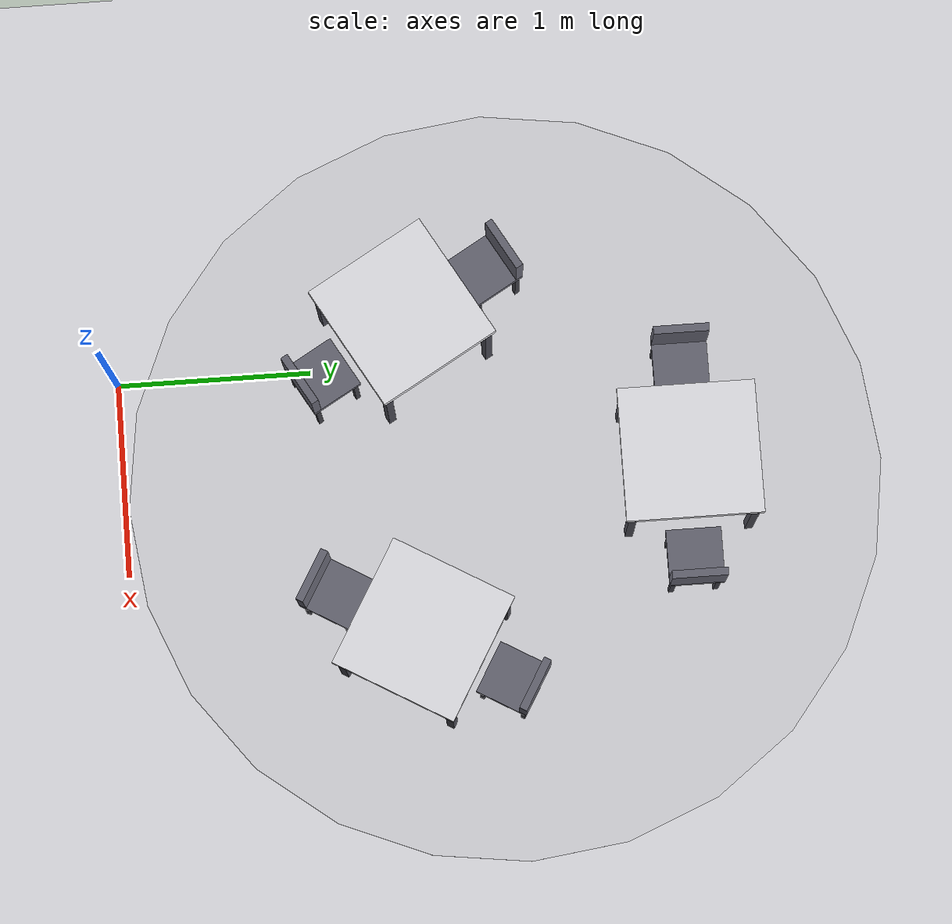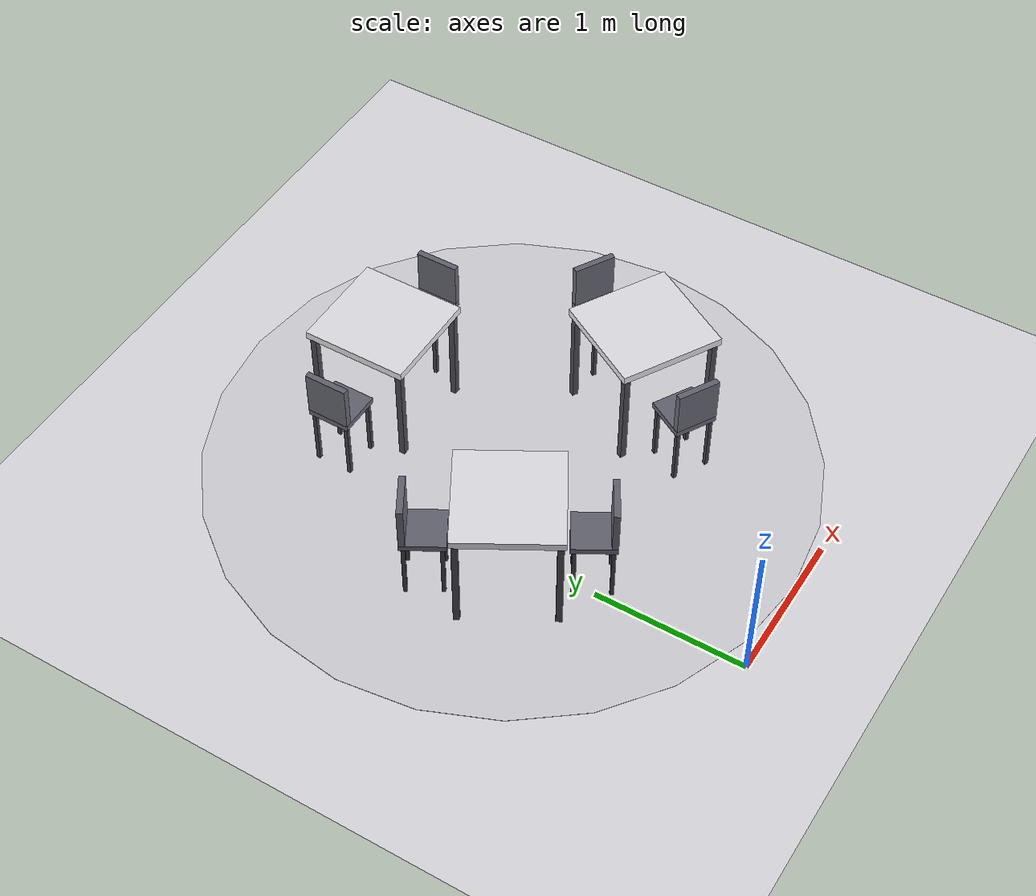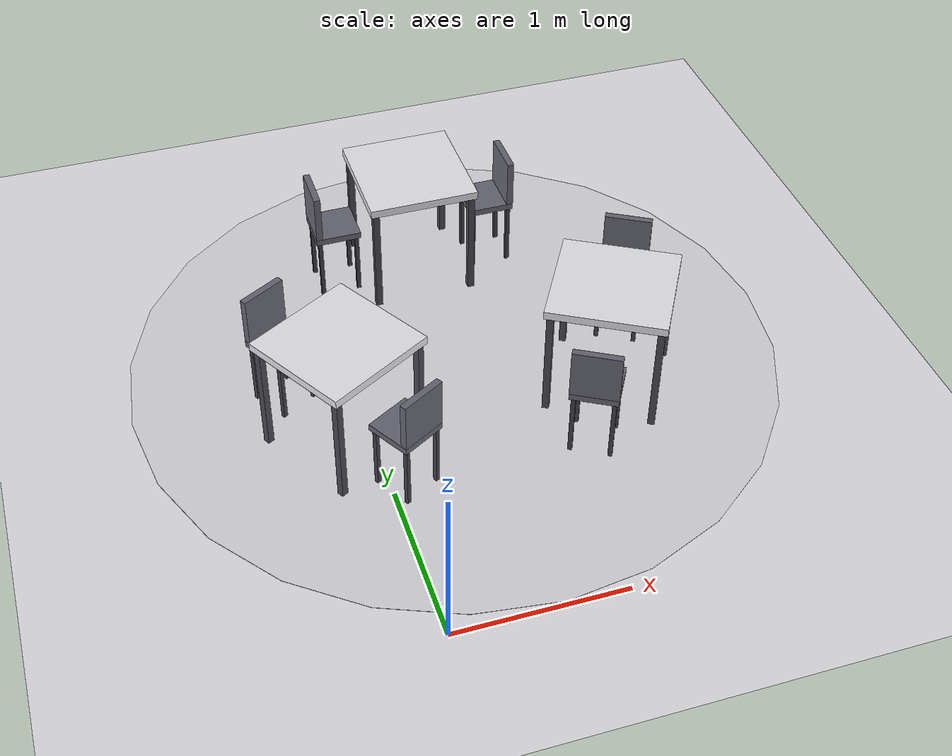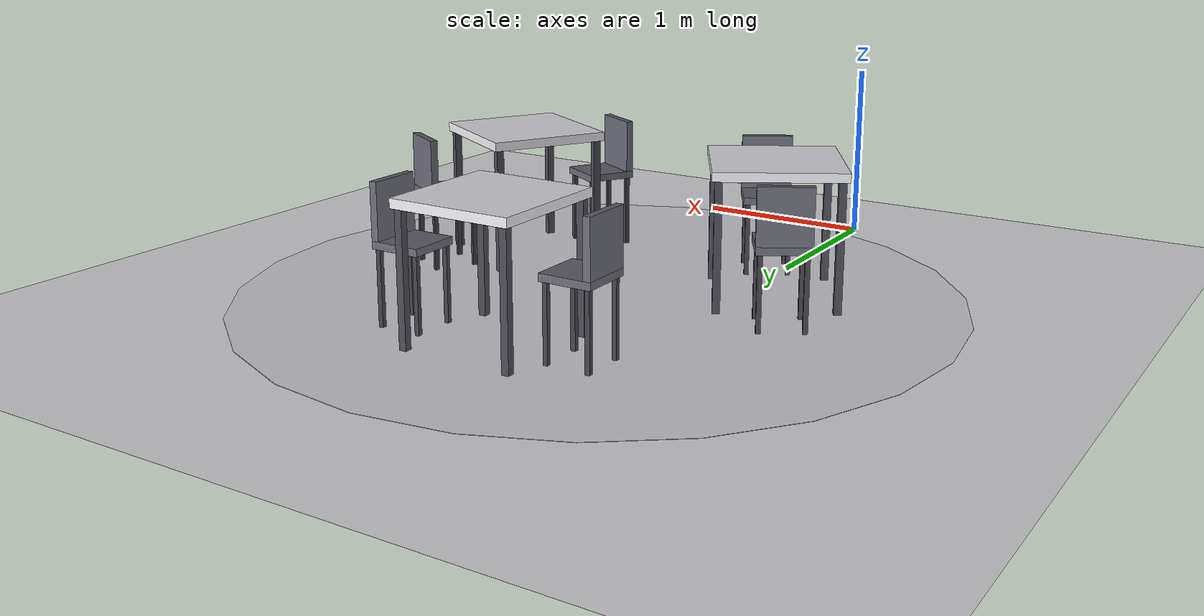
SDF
<sdf version="1.8">
 <world name="restaurant_blueprint_world">
  <model name="ground_plane">
   <static>true</static>
   <link name="link">
    <collision name="collision">
     <geometry><plane><normal>0 0 1</normal><size>120 120</size></plane></geometry>
    </collision>
    <visual name="visual">
     <geometry><plane><normal>0 0 1</normal><size>120 120</size></plane></geometry>
     <material>
      <ambient>0.88 0.88 0.90 1</ambient>
      <diffuse>0.88 0.88 0.90 1</diffuse>
      <specular>0.1 0.1 0.1 1</specular>
     </material>
    </visual>
   </link>
  </model>
  <model name="restaurant_boundary">
   <static>true</static>
   <link name="group02">
    <visual name="east_pillar_floor_disc_vis">
     <pose>0.650 1.970 0.003 0 0 0</pose>
     <geometry><cylinder><radius>1.95</radius><length>0.002</length></cylinder></geometry>
     <material><ambient>0.84 0.84 0.86 1</ambient><diffuse>0.84 0.84 0.86 1</diffuse></material>
    </visual>
    <visual name="e_cluster_table_n_vis">
     <pose>0.650 2.895 0.725 0.0000 0.0000 0.0000</pose>
     <geometry><box><size>0.67 0.69 0.05</size></box></geometry>
     <material><ambient>0.85 0.85 0.88 1</ambient><diffuse>0.90 0.90 0.92 1</diffuse></material>
    </visual>
    <visual name="e_cluster_table_n_leg_1_vis">
     <pose>0.950 3.205 0.350 0 0 0.0000</pose>
     <geometry><box><size>0.04 0.04 0.70</size></box></geometry>
     <material><ambient>0.22 0.22 0.25 1</ambient><diffuse>0.28 0.28 0.32 1</diffuse></material>
    </visual>
    <visual name="e_cluster_table_n_leg_2_vis">
     <pose>0.350 3.205 0.350 0 0 0.0000</pose>
     <geometry><box><size>0.04 0.04 0.70</size></box></geometry>
     <material><ambient>0.22 0.22 0.25 1</ambient><diffuse>0.28 0.28 0.32 1</diffuse></material>
    </visual>
    <visual name="e_cluster_table_n_leg_3_vis">
     <pose>0.950 2.585 0.350 0 0 0.0000</pose>
     <geometry><box><size>0.04 0.04 0.70</size></box></geometry>
     <material><ambient>0.22 0.22 0.25 1</ambient><diffuse>0.28 0.28 0.32 1</diffuse></material>
    </visual>
    <visual name="e_cluster_table_n_leg_4_vis">
     <pose>0.350 2.585 0.350 0 0 0.0000</pose>
     <geometry><box><size>0.04 0.04 0.70</size></box></geometry>
     <material><ambient>0.22 0.22 0.25 1</ambient><diffuse>0.28 0.28 0.32 1</diffuse></material>
    </visual>
    <collision name="e_cluster_table_n_col">
     <pose>0.650 2.895 0.725 0.0000 0.0000 0.0000</pose>
     <geometry><box><size>0.67 0.69 0.05</size></box></geometry>
    </collision>
    <collision name="e_cluster_table_n_leg_1_col">
     <pose>0.950 3.205 0.350 0 0 0.0000</pose>
     <geometry><box><size>0.04 0.04 0.70</size></box></geometry>
    </collision>
    <collision name="e_cluster_table_n_leg_2_col">
     <pose>0.350 3.205 0.350 0 0 0.0000</pose>
     <geometry><box><size>0.04 0.04 0.70</size></box></geometry>
    </collision>
    <collision name="e_cluster_table_n_leg_3_col">
     <pose>0.950 2.585 0.350 0 0 0.0000</pose>
     <geometry><box><size>0.04 0.04 0.70</size></box></geometry>
    </collision>
    <collision name="e_cluster_table_n_leg_4_col">
     <pose>0.350 2.585 0.350 0 0 0.0000</pose>
     <geometry><box><size>0.04 0.04 0.70</size></box></geometry>
    </collision>
    <visual name="e_cluster_chair_n_e_seat_vis">
     <pose>1.146 2.895 0.430 0.0000 0.0000 0.0000</pose>
     <geometry><box><size>0.28 0.28 0.04</size></box></geometry>
     <material><ambient>0.30 0.30 0.33 1</ambient><diffuse>0.40 0.40 0.45 1</diffuse></material>
    </visual>
    <visual name="e_cluster_chair_n_e_back_vis">
     <pose>1.266 2.895 0.600 0 0 0.0000</pose>
     <geometry><box><size>0.04 0.28 0.30</size></box></geometry>
     <material><ambient>0.30 0.30 0.33 1</ambient><diffuse>0.40 0.40 0.45 1</diffuse></material>
    </visual>
    <visual name="e_cluster_chair_n_e_leg_1_vis">
     <pose>1.261 3.010 0.205 0 0 0.0000</pose>
     <geometry><box><size>0.025 0.025 0.41</size></box></geometry>
     <material><ambient>0.20 0.20 0.22 1</ambient><diffuse>0.25 0.25 0.28 1</diffuse></material>
    </visual>
    <visual name="e_cluster_chair_n_e_leg_2_vis">
     <pose>1.031 3.010 0.205 0 0 0.0000</pose>
     <geometry><box><size>0.025 0.025 0.41</size></box></geometry>
     <material><ambient>0.20 0.20 0.22 1</ambient><diffuse>0.25 0.25 0.28 1</diffuse></material>
    </visual>
    <visual name="e_cluster_chair_n_e_leg_3_vis">
     <pose>1.261 2.780 0.205 0 0 0.0000</pose>
     <geometry><box><size>0.025 0.025 0.41</size></box></geometry>
     <material><ambient>0.20 0.20 0.22 1</ambient><diffuse>0.25 0.25 0.28 1</diffuse></material>
    </visual>
    <visual name="e_cluster_chair_n_e_leg_4_vis">
     <pose>1.031 2.780 0.205 0 0 0.0000</pose>
     <geometry><box><size>0.025 0.025 0.41</size></box></geometry>
     <material><ambient>0.20 0.20 0.22 1</ambient><diffuse>0.25 0.25 0.28 1</diffuse></material>
    </visual>
    <collision name="e_cluster_chair_n_e_seat_col">
     <pose>1.146 2.895 0.430 0.0000 0.0000 0.0000</pose>
     <geometry><box><size>0.28 0.28 0.04</size></box></geometry>
    </collision>
    <collision name="e_cluster_chair_n_e_back_col">
     <pose>1.266 2.895 0.600 0 0 0.0000</pose>
     <geometry><box><size>0.04 0.28 0.30</size></box></geometry>
    </collision>
    <collision name="e_cluster_chair_n_e_leg_1_col">
     <pose>1.261 3.010 0.205 0 0 0.0000</pose>
     <geometry><box><size>0.025 0.025 0.41</size></box></geometry>
    </collision>
    <collision name="e_cluster_chair_n_e_leg_2_col">
     <pose>1.031 3.010 0.205 0 0 0.0000</pose>
     <geometry><box><size>0.025 0.025 0.41</size></box></geometry>
    </collision>
    <collision name="e_cluster_chair_n_e_leg_3_col">
     <pose>1.261 2.780 0.205 0 0 0.0000</pose>
     <geometry><box><size>0.025 0.025 0.41</size></box></geometry>
    </collision>
    <collision name="e_cluster_chair_n_e_leg_4_col">
     <pose>1.031 2.780 0.205 0 0 0.0000</pose>
     <geometry><box><size>0.025 0.025 0.41</size></box></geometry>
    </collision>
    <visual name="e_cluster_chair_n_w_seat_vis">
     <pose>0.154 2.895 0.430 0.0000 0.0000 0.0000</pose>
     <geometry><box><size>0.28 0.28 0.04</size></box></geometry>
     <material><ambient>0.30 0.30 0.33 1</ambient><diffuse>0.40 0.40 0.45 1</diffuse></material>
    </visual>
    <visual name="e_cluster_chair_n_w_back_vis">
     <pose>0.034 2.895 0.600 0 0 0.0000</pose>
     <geometry><box><size>0.04 0.28 0.30</size></box></geometry>
     <material><ambient>0.30 0.30 0.33 1</ambient><diffuse>0.40 0.40 0.45 1</diffuse></material>
    </visual>
    <visual name="e_cluster_chair_n_w_leg_1_vis">
     <pose>0.269 3.010 0.205 0 0 0.0000</pose>
     <geometry><box><size>0.025 0.025 0.41</size></box></geometry>
     <material><ambient>0.20 0.20 0.22 1</ambient><diffuse>0.25 0.25 0.28 1</diffuse></material>
    </visual>
    <visual name="e_cluster_chair_n_w_leg_2_vis">
     <pose>0.039 3.010 0.205 0 0 0.0000</pose>
     <geometry><box><size>0.025 0.025 0.41</size></box></geometry>
     <material><ambient>0.20 0.20 0.22 1</ambient><diffuse>0.25 0.25 0.28 1</diffuse></material>
    </visual>
    <visual name="e_cluster_chair_n_w_leg_3_vis">
     <pose>0.269 2.780 0.205 0 0 0.0000</pose>
     <geometry><box><size>0.025 0.025 0.41</size></box></geometry>
     <material><ambient>0.20 0.20 0.22 1</ambient><diffuse>0.25 0.25 0.28 1</diffuse></material>
    </visual>
    <visual name="e_cluster_chair_n_w_leg_4_vis">
     <pose>0.039 2.780 0.205 0 0 0.0000</pose>
     <geometry><box><size>0.025 0.025 0.41</size></box></geometry>
     <material><ambient>0.20 0.20 0.22 1</ambient><diffuse>0.25 0.25 0.28 1</diffuse></material>
    </visual>
    <collision name="e_cluster_chair_n_w_seat_col">
     <pose>0.154 2.895 0.430 0.0000 0.0000 0.0000</pose>
     <geometry><box><size>0.28 0.28 0.04</size></box></geometry>
    </collision>
    <collision name="e_cluster_chair_n_w_back_col">
     <pose>0.034 2.895 0.600 0 0 0.0000</pose>
     <geometry><box><size>0.04 0.28 0.30</size></box></geometry>
    </collision>
    <collision name="e_cluster_chair_n_w_leg_1_col">
     <pose>0.269 3.010 0.205 0 0 0.0000</pose>
     <geometry><box><size>0.025 0.025 0.41</size></box></geometry>
    </collision>
    <collision name="e_cluster_chair_n_w_leg_2_col">
     <pose>0.039 3.010 0.205 0 0 0.0000</pose>
     <geometry><box><size>0.025 0.025 0.41</size></box></geometry>
    </collision>
    <collision name="e_cluster_chair_n_w_leg_3_col">
     <pose>0.269 2.780 0.205 0 0 0.0000</pose>
     <geometry><box><size>0.025 0.025 0.41</size></box></geometry>
    </collision>
    <collision name="e_cluster_chair_n_w_leg_4_col">
     <pose>0.039 2.780 0.205 0 0 0.0000</pose>
     <geometry><box><size>0.025 0.025 0.41</size></box></geometry>
    </collision>
    <visual name="e_cluster_table_sw_vis">
     <pose>-0.151 1.507 0.725 0.0000 0.0000 2.0944</pose>
     <geometry><box><size>0.67 0.69 0.05</size></box></geometry>
     <material><ambient>0.85 0.85 0.88 1</ambient><diffuse>0.90 0.90 0.92 1</diffuse></material>
    </visual>
    <visual name="e_cluster_table_sw_leg_1_vis">
     <pose>-0.569 1.612 0.350 0 0 2.0944</pose>
     <geometry><box><size>0.04 0.04 0.70</size></box></geometry>
     <material><ambient>0.22 0.22 0.25 1</ambient><diffuse>0.28 0.28 0.32 1</diffuse></material>
    </visual>
    <visual name="e_cluster_table_sw_leg_2_vis">
     <pose>-0.269 1.092 0.350 0 0 2.0944</pose>
     <geometry><box><size>0.04 0.04 0.70</size></box></geometry>
     <material><ambient>0.22 0.22 0.25 1</ambient><diffuse>0.28 0.28 0.32 1</diffuse></material>
    </visual>
    <visual name="e_cluster_table_sw_leg_3_vis">
     <pose>-0.033 1.922 0.350 0 0 2.0944</pose>
     <geometry><box><size>0.04 0.04 0.70</size></box></geometry>
     <material><ambient>0.22 0.22 0.25 1</ambient><diffuse>0.28 0.28 0.32 1</diffuse></material>
    </visual>
    <visual name="e_cluster_table_sw_leg_4_vis">
     <pose>0.267 1.402 0.350 0 0 2.0944</pose>
     <geometry><box><size>0.04 0.04 0.70</size></box></geometry>
     <material><ambient>0.22 0.22 0.25 1</ambient><diffuse>0.28 0.28 0.32 1</diffuse></material>
    </visual>
    <collision name="e_cluster_table_sw_col">
     <pose>-0.151 1.507 0.725 0.0000 0.0000 2.0944</pose>
     <geometry><box><size>0.67 0.69 0.05</size></box></geometry>
    </collision>
    <collision name="e_cluster_table_sw_leg_1_col">
     <pose>-0.569 1.612 0.350 0 0 2.0944</pose>
     <geometry><box><size>0.04 0.04 0.70</size></box></geometry>
    </collision>
    <collision name="e_cluster_table_sw_leg_2_col">
     <pose>-0.269 1.092 0.350 0 0 2.0944</pose>
     <geometry><box><size>0.04 0.04 0.70</size></box></geometry>
    </collision>
    <collision name="e_cluster_table_sw_leg_3_col">
     <pose>-0.033 1.922 0.350 0 0 2.0944</pose>
     <geometry><box><size>0.04 0.04 0.70</size></box></geometry>
    </collision>
    <collision name="e_cluster_table_sw_leg_4_col">
     <pose>0.267 1.402 0.350 0 0 2.0944</pose>
     <geometry><box><size>0.04 0.04 0.70</size></box></geometry>
    </collision>
    <visual name="e_cluster_chair_sw_1_seat_vis">
     <pose>-0.399 1.937 0.430 0.0000 0.0000 2.0944</pose>
     <geometry><box><size>0.28 0.28 0.04</size></box></geometry>
     <material><ambient>0.30 0.30 0.33 1</ambient><diffuse>0.40 0.40 0.45 1</diffuse></material>
    </visual>
    <visual name="e_cluster_chair_sw_1_back_vis">
     <pose>-0.459 2.041 0.600 0 0 2.0944</pose>
     <geometry><box><size>0.04 0.28 0.30</size></box></geometry>
     <material><ambient>0.30 0.30 0.33 1</ambient><diffuse>0.40 0.40 0.45 1</diffuse></material>
    </visual>
    <visual name="e_cluster_chair_sw_1_leg_1_vis">
     <pose>-0.556 1.979 0.205 0 0 2.0944</pose>
     <geometry><box><size>0.025 0.025 0.41</size></box></geometry>
     <material><ambient>0.20 0.20 0.22 1</ambient><diffuse>0.25 0.25 0.28 1</diffuse></material>
    </visual>
    <visual name="e_cluster_chair_sw_1_leg_2_vis">
     <pose>-0.441 1.780 0.205 0 0 2.0944</pose>
     <geometry><box><size>0.025 0.025 0.41</size></box></geometry>
     <material><ambient>0.20 0.20 0.22 1</ambient><diffuse>0.25 0.25 0.28 1</diffuse></material>
    </visual>
    <visual name="e_cluster_chair_sw_1_leg_3_vis">
     <pose>-0.357 2.094 0.205 0 0 2.0944</pose>
     <geometry><box><size>0.025 0.025 0.41</size></box></geometry>
     <material><ambient>0.20 0.20 0.22 1</ambient><diffuse>0.25 0.25 0.28 1</diffuse></material>
    </visual>
    <visual name="e_cluster_chair_sw_1_leg_4_vis">
     <pose>-0.242 1.895 0.205 0 0 2.0944</pose>
     <geometry><box><size>0.025 0.025 0.41</size></box></geometry>
     <material><ambient>0.20 0.20 0.22 1</ambient><diffuse>0.25 0.25 0.28 1</diffuse></material>
    </visual>
    <collision name="e_cluster_chair_sw_1_seat_col">
     <pose>-0.399 1.937 0.430 0.0000 0.0000 2.0944</pose>
     <geometry><box><size>0.28 0.28 0.04</size></box></geometry>
    </collision>
    <collision name="e_cluster_chair_sw_1_back_col">
     <pose>-0.459 2.041 0.600 0 0 2.0944</pose>
     <geometry><box><size>0.04 0.28 0.30</size></box></geometry>
    </collision>
    <collision name="e_cluster_chair_sw_1_leg_1_col">
     <pose>-0.556 1.979 0.205 0 0 2.0944</pose>
     <geometry><box><size>0.025 0.025 0.41</size></box></geometry>
    </collision>
    <collision name="e_cluster_chair_sw_1_leg_2_col">
     <pose>-0.441 1.780 0.205 0 0 2.0944</pose>
     <geometry><box><size>0.025 0.025 0.41</size></box></geometry>
    </collision>
    <collision name="e_cluster_chair_sw_1_leg_3_col">
     <pose>-0.357 2.094 0.205 0 0 2.0944</pose>
     <geometry><box><size>0.025 0.025 0.41</size></box></geometry>
    </collision>
    <collision name="e_cluster_chair_sw_1_leg_4_col">
     <pose>-0.242 1.895 0.205 0 0 2.0944</pose>
     <geometry><box><size>0.025 0.025 0.41</size></box></geometry>
    </collision>
    <visual name="e_cluster_chair_sw_2_seat_vis">
     <pose>0.097 1.078 0.430 0.0000 0.0000 2.0944</pose>
     <geometry><box><size>0.28 0.28 0.04</size></box></geometry>
     <material><ambient>0.30 0.30 0.33 1</ambient><diffuse>0.40 0.40 0.45 1</diffuse></material>
    </visual>
    <visual name="e_cluster_chair_sw_2_back_vis">
     <pose>0.157 0.974 0.600 0 0 2.0944</pose>
     <geometry><box><size>0.04 0.28 0.30</size></box></geometry>
     <material><ambient>0.30 0.30 0.33 1</ambient><diffuse>0.40 0.40 0.45 1</diffuse></material>
    </visual>
    <visual name="e_cluster_chair_sw_2_leg_1_vis">
     <pose>-0.060 1.120 0.205 0 0 2.0944</pose>
     <geometry><box><size>0.025 0.025 0.41</size></box></geometry>
     <material><ambient>0.20 0.20 0.22 1</ambient><diffuse>0.25 0.25 0.28 1</diffuse></material>
    </visual>
    <visual name="e_cluster_chair_sw_2_leg_2_vis">
     <pose>0.055 0.921 0.205 0 0 2.0944</pose>
     <geometry><box><size>0.025 0.025 0.41</size></box></geometry>
     <material><ambient>0.20 0.20 0.22 1</ambient><diffuse>0.25 0.25 0.28 1</diffuse></material>
    </visual>
    <visual name="e_cluster_chair_sw_2_leg_3_vis">
     <pose>0.139 1.235 0.205 0 0 2.0944</pose>
     <geometry><box><size>0.025 0.025 0.41</size></box></geometry>
     <material><ambient>0.20 0.20 0.22 1</ambient><diffuse>0.25 0.25 0.28 1</diffuse></material>
    </visual>
    <visual name="e_cluster_chair_sw_2_leg_4_vis">
     <pose>0.254 1.036 0.205 0 0 2.0944</pose>
     <geometry><box><size>0.025 0.025 0.41</size></box></geometry>
     <material><ambient>0.20 0.20 0.22 1</ambient><diffuse>0.25 0.25 0.28 1</diffuse></material>
    </visual>
    <collision name="e_cluster_chair_sw_2_seat_col">
     <pose>0.097 1.078 0.430 0.0000 0.0000 2.0944</pose>
     <geometry><box><size>0.28 0.28 0.04</size></box></geometry>
    </collision>
    <collision name="e_cluster_chair_sw_2_back_col">
     <pose>0.157 0.974 0.600 0 0 2.0944</pose>
     <geometry><box><size>0.04 0.28 0.30</size></box></geometry>
    </collision>
    <collision name="e_cluster_chair_sw_2_leg_1_col">
     <pose>-0.060 1.120 0.205 0 0 2.0944</pose>
     <geometry><box><size>0.025 0.025 0.41</size></box></geometry>
    </collision>
    <collision name="e_cluster_chair_sw_2_leg_2_col">
     <pose>0.055 0.921 0.205 0 0 2.0944</pose>
     <geometry><box><size>0.025 0.025 0.41</size></box></geometry>
    </collision>
    <collision name="e_cluster_chair_sw_2_leg_3_col">
     <pose>0.139 1.235 0.205 0 0 2.0944</pose>
     <geometry><box><size>0.025 0.025 0.41</size></box></geometry>
    </collision>
    <collision name="e_cluster_chair_sw_2_leg_4_col">
     <pose>0.254 1.036 0.205 0 0 2.0944</pose>
     <geometry><box><size>0.025 0.025 0.41</size></box></geometry>
    </collision>
    <visual name="e_cluster_table_se_vis">
     <pose>1.451 1.507 0.725 0.0000 0.0000 -2.0944</pose>
     <geometry><box><size>0.67 0.69 0.05</size></box></geometry>
     <material><ambient>0.85 0.85 0.88 1</ambient><diffuse>0.90 0.90 0.92 1</diffuse></material>
    </visual>
    <visual name="e_cluster_table_se_leg_1_vis">
     <pose>1.569 1.092 0.350 0 0 -2.0944</pose>
     <geometry><box><size>0.04 0.04 0.70</size></box></geometry>
     <material><ambient>0.22 0.22 0.25 1</ambient><diffuse>0.28 0.28 0.32 1</diffuse></material>
    </visual>
    <visual name="e_cluster_table_se_leg_2_vis">
     <pose>1.869 1.612 0.350 0 0 -2.0944</pose>
     <geometry><box><size>0.04 0.04 0.70</size></box></geometry>
     <material><ambient>0.22 0.22 0.25 1</ambient><diffuse>0.28 0.28 0.32 1</diffuse></material>
    </visual>
    <visual name="e_cluster_table_se_leg_3_vis">
     <pose>1.033 1.402 0.350 0 0 -2.0944</pose>
     <geometry><box><size>0.04 0.04 0.70</size></box></geometry>
     <material><ambient>0.22 0.22 0.25 1</ambient><diffuse>0.28 0.28 0.32 1</diffuse></material>
    </visual>
    <visual name="e_cluster_table_se_leg_4_vis">
     <pose>1.333 1.922 0.350 0 0 -2.0944</pose>
     <geometry><box><size>0.04 0.04 0.70</size></box></geometry>
     <material><ambient>0.22 0.22 0.25 1</ambient><diffuse>0.28 0.28 0.32 1</diffuse></material>
    </visual>
    <collision name="e_cluster_table_se_col">
     <pose>1.451 1.507 0.725 0.0000 0.0000 -2.0944</pose>
     <geometry><box><size>0.67 0.69 0.05</size></box></geometry>
    </collision>
    <collision name="e_cluster_table_se_leg_1_col">
     <pose>1.569 1.092 0.350 0 0 -2.0944</pose>
     <geometry><box><size>0.04 0.04 0.70</size></box></geometry>
    </collision>
    <collision name="e_cluster_table_se_leg_2_col">
     <pose>1.869 1.612 0.350 0 0 -2.0944</pose>
     <geometry><box><size>0.04 0.04 0.70</size></box></geometry>
    </collision>
    <collision name="e_cluster_table_se_leg_3_col">
     <pose>1.033 1.402 0.350 0 0 -2.0944</pose>
     <geometry><box><size>0.04 0.04 0.70</size></box></geometry>
    </collision>
    <collision name="e_cluster_table_se_leg_4_col">
     <pose>1.333 1.922 0.350 0 0 -2.0944</pose>
     <geometry><box><size>0.04 0.04 0.70</size></box></geometry>
    </collision>
    <visual name="e_cluster_chair_se_1_seat_vis">
     <pose>1.203 1.078 0.430 0.0000 0.0000 -2.0944</pose>
     <geometry><box><size>0.28 0.28 0.04</size></box></geometry>
     <material><ambient>0.30 0.30 0.33 1</ambient><diffuse>0.40 0.40 0.45 1</diffuse></material>
    </visual>
    <visual name="e_cluster_chair_se_1_back_vis">
     <pose>1.143 0.974 0.600 0 0 -2.0944</pose>
     <geometry><box><size>0.04 0.28 0.30</size></box></geometry>
     <material><ambient>0.30 0.30 0.33 1</ambient><diffuse>0.40 0.40 0.45 1</diffuse></material>
    </visual>
    <visual name="e_cluster_chair_se_1_leg_1_vis">
     <pose>1.245 0.921 0.205 0 0 -2.0944</pose>
     <geometry><box><size>0.025 0.025 0.41</size></box></geometry>
     <material><ambient>0.20 0.20 0.22 1</ambient><diffuse>0.25 0.25 0.28 1</diffuse></material>
    </visual>
    <visual name="e_cluster_chair_se_1_leg_2_vis">
     <pose>1.360 1.120 0.205 0 0 -2.0944</pose>
     <geometry><box><size>0.025 0.025 0.41</size></box></geometry>
     <material><ambient>0.20 0.20 0.22 1</ambient><diffuse>0.25 0.25 0.28 1</diffuse></material>
    </visual>
    <visual name="e_cluster_chair_se_1_leg_3_vis">
     <pose>1.046 1.036 0.205 0 0 -2.0944</pose>
     <geometry><box><size>0.025 0.025 0.41</size></box></geometry>
     <material><ambient>0.20 0.20 0.22 1</ambient><diffuse>0.25 0.25 0.28 1</diffuse></material>
    </visual>
    <visual name="e_cluster_chair_se_1_leg_4_vis">
     <pose>1.161 1.235 0.205 0 0 -2.0944</pose>
     <geometry><box><size>0.025 0.025 0.41</size></box></geometry>
     <material><ambient>0.20 0.20 0.22 1</ambient><diffuse>0.25 0.25 0.28 1</diffuse></material>
    </visual>
    <collision name="e_cluster_chair_se_1_seat_col">
     <pose>1.203 1.078 0.430 0.0000 0.0000 -2.0944</pose>
     <geometry><box><size>0.28 0.28 0.04</size></box></geometry>
    </collision>
    <collision name="e_cluster_chair_se_1_back_col">
     <pose>1.143 0.974 0.600 0 0 -2.0944</pose>
     <geometry><box><size>0.04 0.28 0.30</size></box></geometry>
    </collision>
    <collision name="e_cluster_chair_se_1_leg_1_col">
     <pose>1.245 0.921 0.205 0 0 -2.0944</pose>
     <geometry><box><size>0.025 0.025 0.41</size></box></geometry>
    </collision>
    <collision name="e_cluster_chair_se_1_leg_2_col">
     <pose>1.360 1.120 0.205 0 0 -2.0944</pose>
     <geometry><box><size>0.025 0.025 0.41</size></box></geometry>
    </collision>
    <collision name="e_cluster_chair_se_1_leg_3_col">
     <pose>1.046 1.036 0.205 0 0 -2.0944</pose>
     <geometry><box><size>0.025 0.025 0.41</size></box></geometry>
    </collision>
    <collision name="e_cluster_chair_se_1_leg_4_col">
     <pose>1.161 1.235 0.205 0 0 -2.0944</pose>
     <geometry><box><size>0.025 0.025 0.41</size></box></geometry>
    </collision>
    <visual name="e_cluster_chair_se_2_seat_vis">
     <pose>1.699 1.937 0.430 0.0000 0.0000 -2.0944</pose>
     <geometry><box><size>0.28 0.28 0.04</size></box></geometry>
     <material><ambient>0.30 0.30 0.33 1</ambient><diffuse>0.40 0.40 0.45 1</diffuse></material>
    </visual>
    <visual name="e_cluster_chair_se_2_back_vis">
     <pose>1.759 2.041 0.600 0 0 -2.0944</pose>
     <geometry><box><size>0.04 0.28 0.30</size></box></geometry>
     <material><ambient>0.30 0.30 0.33 1</ambient><diffuse>0.40 0.40 0.45 1</diffuse></material>
    </visual>
    <visual name="e_cluster_chair_se_2_leg_1_vis">
     <pose>1.741 1.780 0.205 0 0 -2.0944</pose>
     <geometry><box><size>0.025 0.025 0.41</size></box></geometry>
     <material><ambient>0.20 0.20 0.22 1</ambient><diffuse>0.25 0.25 0.28 1</diffuse></material>
    </visual>
    <visual name="e_cluster_chair_se_2_leg_2_vis">
     <pose>1.856 1.979 0.205 0 0 -2.0944</pose>
     <geometry><box><size>0.025 0.025 0.41</size></box></geometry>
     <material><ambient>0.20 0.20 0.22 1</ambient><diffuse>0.25 0.25 0.28 1</diffuse></material>
    </visual>
    <visual name="e_cluster_chair_se_2_leg_3_vis">
     <pose>1.542 1.895 0.205 0 0 -2.0944</pose>
     <geometry><box><size>0.025 0.025 0.41</size></box></geometry>
     <material><ambient>0.20 0.20 0.22 1</ambient><diffuse>0.25 0.25 0.28 1</diffuse></material>
    </visual>
    <visual name="e_cluster_chair_se_2_leg_4_vis">
     <pose>1.657 2.094 0.205 0 0 -2.0944</pose>
     <geometry><box><size>0.025 0.025 0.41</size></box></geometry>
     <material><ambient>0.20 0.20 0.22 1</ambient><diffuse>0.25 0.25 0.28 1</diffuse></material>
    </visual>
    <collision name="e_cluster_chair_se_2_seat_col">
     <pose>1.699 1.937 0.430 0.0000 0.0000 -2.0944</pose>
     <geometry><box><size>0.28 0.28 0.04</size></box></geometry>
    </collision>
    <collision name="e_cluster_chair_se_2_back_col">
     <pose>1.759 2.041 0.600 0 0 -2.0944</pose>
     <geometry><box><size>0.04 0.28 0.30</size></box></geometry>
    </collision>
    <collision name="e_cluster_chair_se_2_leg_1_col">
     <pose>1.741 1.780 0.205 0 0 -2.0944</pose>
     <geometry><box><size>0.025 0.025 0.41</size></box></geometry>
    </collision>
    <collision name="e_cluster_chair_se_2_leg_2_col">
     <pose>1.856 1.979 0.205 0 0 -2.0944</pose>
     <geometry><box><size>0.025 0.025 0.41</size></box></geometry>
    </collision>
    <collision name="e_cluster_chair_se_2_leg_3_col">
     <pose>1.542 1.895 0.205 0 0 -2.0944</pose>
     <geometry><box><size>0.025 0.025 0.41</size></box></geometry>
    </collision>
    <collision name="e_cluster_chair_se_2_leg_4_col">
     <pose>1.657 2.094 0.205 0 0 -2.0944</pose>
     <geometry><box><size>0.025 0.025 0.41</size></box></geometry>
    </collision>
   </link>
  </model>
 </world>
</sdf>
